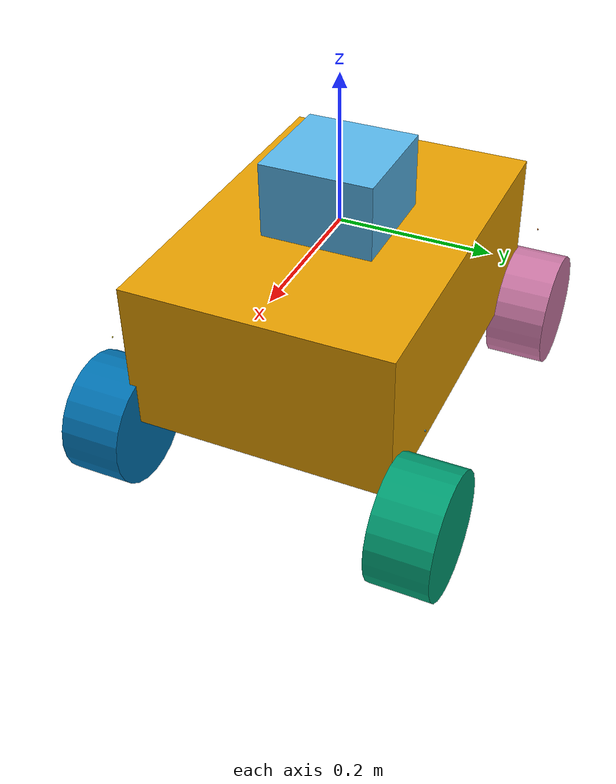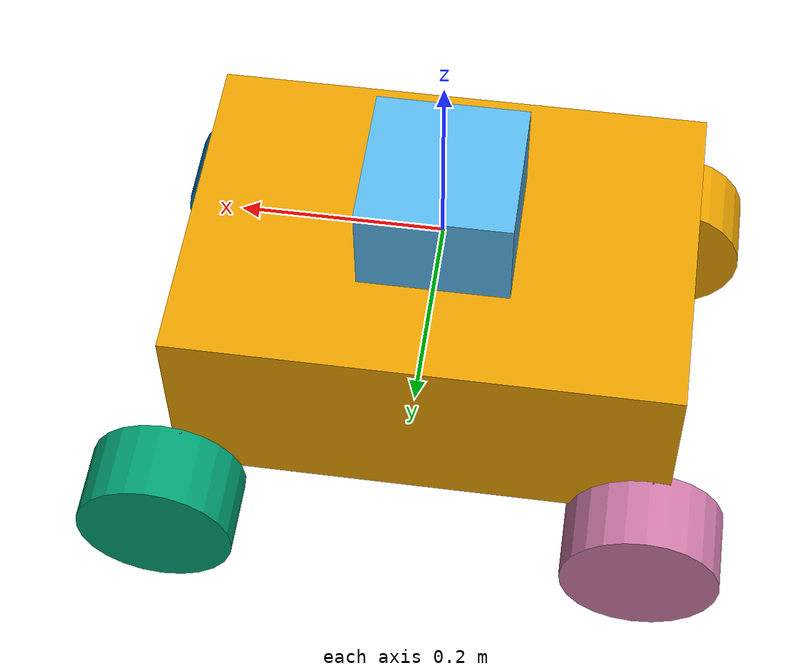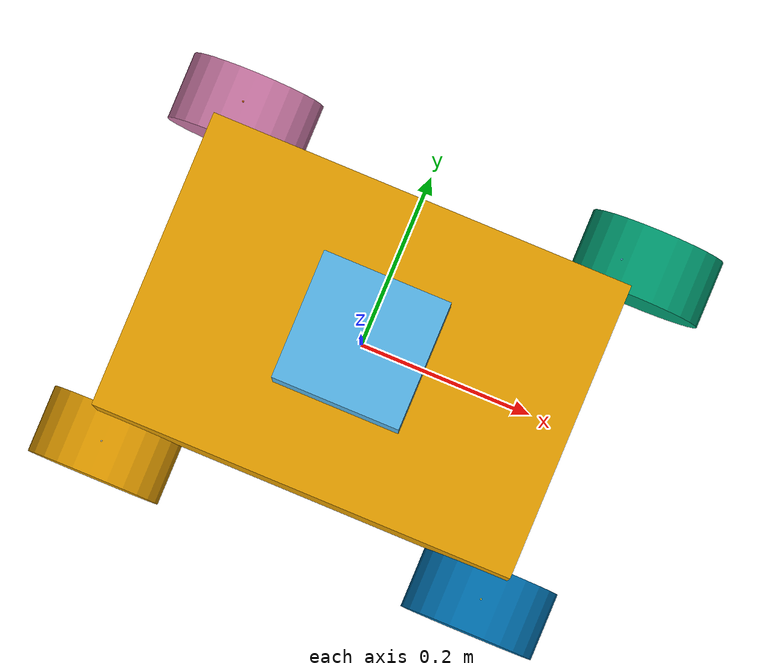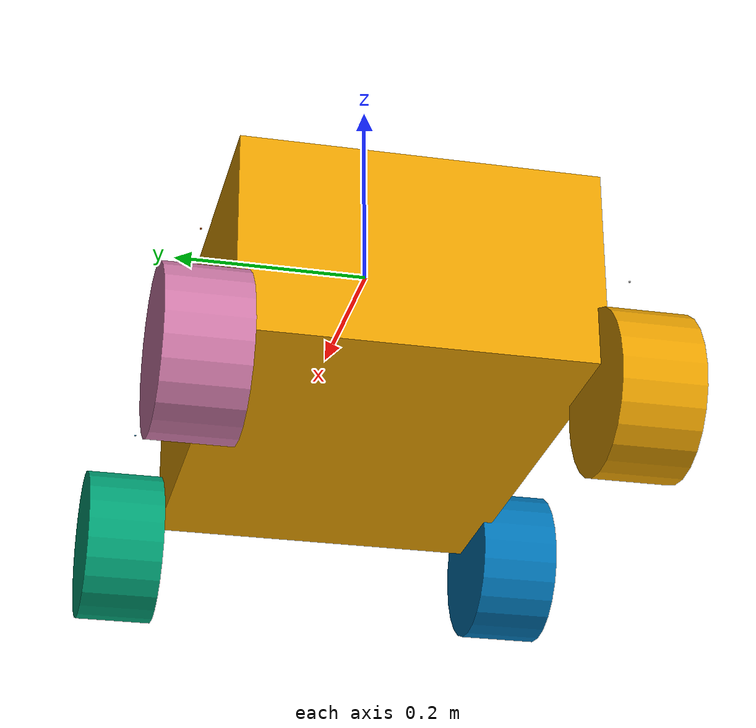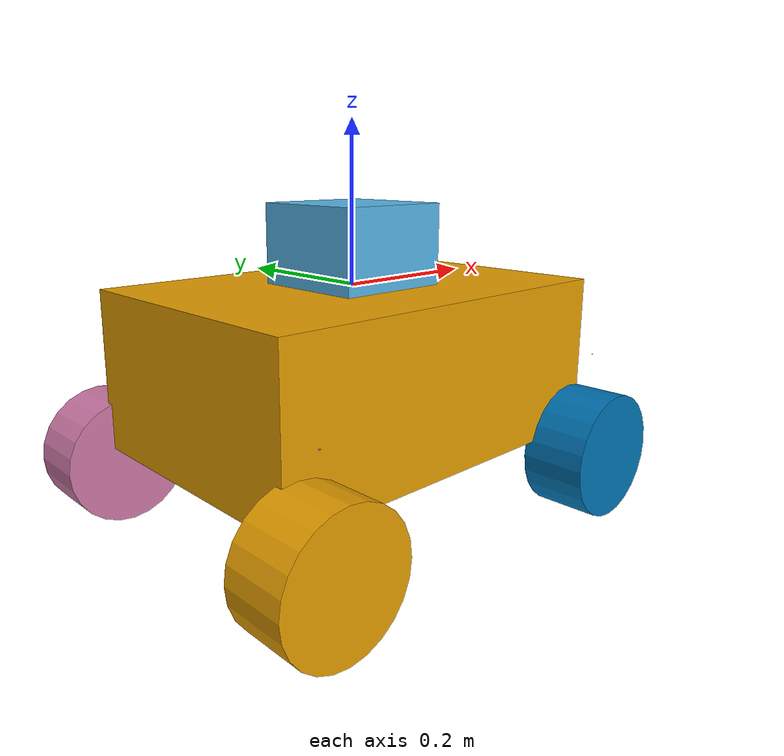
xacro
<?xml version="1.0"?>
<robot xmlns:xacro="http://ros.org/wiki/xacro" name="ranger_ouster">
    <xacro:arg name="use_simulation" default="false"/>
    <xacro:include filename="$(find simulation_config)/description/urdf/ranger_mini_gazebo.xacro"/>

    <link name="os_sensor">
        <inertial>
            <origin xyz="0.0 0.0 0.0"/>
            <mass value="0.5"/>
            <inertia ixx="1" ixy="0.0" ixz="0.0" iyy="1" iyz="0.0" izz="1"/>
        </inertial>
        <visual>
            <origin xyz="0 0 0" rpy="0 0 0" />
            <geometry>
                <box size="0.15 0.15 0.2"/>
            </geometry>
        </visual>
        <collision>
            <origin xyz="0 0 0" rpy="0 0 0" />
            <geometry>
                <box size="0.15 0.15 0.2"/>
            </geometry>
        </collision>
    </link>
    <joint name="fixed_ouster_joint" type="fixed">
        <parent link="base_link"/>
        <child link="os_sensor"/>
        <origin xyz="0.0 0.0 0.0" rpy="0 0 0" />
    </joint>
</robot>

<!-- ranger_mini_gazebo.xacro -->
<robot name="ranger_mini_v2"
    xmlns:xacro="http://ros.org/wiki/xacro">
    <!-- Base link -->
    <link name="base_link">
        <inertial>
            <origin xyz="0.0 0.0 0.0"/>
            <mass value="10"/>
            <inertia ixx="1" ixy="0.0" ixz="0.0" iyy="1" iyz="0.0" izz="1"/>
        </inertial>
        <visual>
            <origin xyz="0 0 -0.1" rpy="0 0 0" />
            <geometry>
                <box size="0.5 0.35 0.2"/>
            </geometry>
        </visual>
        <collision>
            <origin xyz="0 0 -0.1" rpy="0 0 0" />
            <geometry>
                <box size="0.5 0.35 0.2"/>
            </geometry>
        </collision>

    </link>

   <link name="fl_steering_wheel_link">
        <inertial>
            <origin xyz="0.0 0.0 0.0"/>
            <mass value="1"/>
            <inertia ixx="0.01" ixy="0.0" ixz="0.0" iyy="0.01" iyz="0.0" izz="0.01"/>
        </inertial>
        <visual>
            <origin xyz="0 0 0" rpy="0 0 0" />
            <geometry>
                <cylinder radius="0.001" length="0.001"/>
            </geometry>
        </visual>
        <collision>
            <origin xyz="0 0 0.008" rpy="0 0 0" />
            <geometry>
                <cylinder radius="0.001" length="0.001"/>
            </geometry>
        </collision>
        <collision>
            <origin xyz="0 0 0" rpy="0 0 0" />
            <geometry>
                <cylinder radius="0.001" length="0.001"/>
            </geometry>
        </collision>
    </link>
    <joint name="fl_steering_wheel" type="revolute">
        <origin xyz="0.23 0.206 -0.1" rpy="0 0 0" />
        <parent link="base_link"/>
        <child link="fl_steering_wheel_link"/>
        <axis xyz="0 0 1" rpy="0 0 0" />
        <limit effort="5" velocity="6.28"  lower="-2.1" upper="2.1" />
    </joint>

        <link name="fl_wheel_link">
            <inertial>
                <mass value="8" />
                <origin xyz="0 0 0" />
                <inertia ixx="0.1171" ixy="0" ixz="0" iyy="0.1361" iyz="0" izz="0.1171" />
            </inertial>
            <visual>
                <origin xyz="0 0 0" rpy="1.57 0 0" />
                <geometry>
                    <cylinder length="0.08" radius="0.08" />
                </geometry>
            </visual>
            <collision>
                <origin xyz="0 0 0" rpy="1.57 0 0" />
                <geometry>
                    <cylinder length="0.08" radius="0.08" />
                </geometry>
            </collision>
        </link>

        <joint name="fl_wheel" type="continuous">
            <origin xyz="0.03 0.01 -0.12" rpy="0 0 0" />
            <parent link="fl_steering_wheel_link"/>
            <child link="fl_wheel_link"/>
            <axis xyz="0 1 0" rpy="0 0 0" />
        </joint>

   <link name="fr_steering_wheel_link">
        <inertial>
            <origin xyz="0.0 0.0 0.0" rpy="0.0 0.0 0.0"/>
            <mass value="1"/>
            <inertia ixx="0.01" ixy="0.0" ixz="0.0" iyy="0.01" iyz="0.0" izz="0.01"/>
        </inertial>
        <visual>
            <origin xyz="0 0 0.008" rpy="0 0 0" />
            <geometry>
                <cylinder radius="0.001" length="0.001"/>
            </geometry>
        </visual>
        <collision>
            <origin xyz="0 0 0.008" rpy="0 0 0" />
            <geometry>
                <cylinder radius="0.001" length="0.001"/>
            </geometry>
        </collision>
    </link>
    <joint name="fr_steering_wheel" type="revolute">
        <origin xyz="0.23 -0.206 -0.1" rpy="0 0 0" />
        <parent link="base_link"/>
        <child link="fr_steering_wheel_link"/>
        <axis xyz="0 0 1" rpy="0 0 0" />
        <limit effort="5" velocity="6.28"  lower="-2.1" upper="2.1" />
    </joint>

        <link name="fr_wheel_link">
            <inertial>
                <mass value="8" />
                <origin xyz="0 0 0" />
                <inertia ixx="0.1171" ixy="0" ixz="0" iyy="0.1361" iyz="0" izz="0.1171" />
            </inertial>
            <visual>
                <origin xyz="0 0 0" rpy="1.57 0 0" />
                <geometry>
                    <cylinder length="0.08" radius="0.08" />
                </geometry>
            </visual>
            <collision>
                <origin xyz="0 0 0" rpy="1.57 0 0" />
                <geometry>
                    <cylinder length="0.08" radius="0.085" />
                </geometry>
            </collision>
        </link>

        <joint name="fr_wheel" type="continuous">
            <origin xyz="0.0 0.0 -0.12" rpy="0 0 0" />
            <parent link="fr_steering_wheel_link"/>
            <child link="fr_wheel_link"/>
            <axis xyz="0 1 0" rpy="0 0 0" />
        </joint>

   <link name="rl_steering_wheel_link">
        <inertial>
            <origin xyz="0.0 0.0 0.0" rpy="0.0 0.0 0.0"/>
            <mass value="1"/>
            <inertia ixx="0.01" ixy="0.0" ixz="0.0" iyy="0.01" iyz="0.0" izz="0.01"/>
        </inertial>
        <visual>
            <origin xyz="0 0 0.008" rpy="0 0 0" />
            <geometry>
                <cylinder radius="0.001" length="0.001"/>
            </geometry>
        </visual>
        <collision>
            <origin xyz="0 0 0.008" rpy="0 0 0" />
            <geometry>
                <cylinder radius="0.001" length="0.001"/>
            </geometry>
        </collision>
    </link>
    <joint name="rl_steering_wheel" type="revolute">
        <origin xyz="-0.23 0.206 -0.1" rpy="0 0 0" />
        <parent link="base_link"/>
        <child link="rl_steering_wheel_link"/>
        <axis xyz="0 0 1" rpy="0 0 0" />
        <limit effort="5" velocity="6.28"  lower="-2.1" upper="2.1" />
    </joint>

        <link name="rl_wheel_link">
            <inertial>
                <mass value="8" />
                <origin xyz="0 0 0" />
                <inertia ixx="0.1171" ixy="0" ixz="0" iyy="0.1361" iyz="0" izz="0.1171" />
            </inertial>
            <visual>
                <origin xyz="0 0 0" rpy="1.57 0 0" />
                <geometry>
                    <cylinder length="0.08" radius="0.08" />
                </geometry>
            </visual>
            <collision>
                <origin xyz="0 0 0" rpy="1.57 0 0" />
                <geometry>
                    <cylinder length="0.08" radius="0.08" />
                </geometry>
            </collision>
        </link>

        <joint name="rl_wheel" type="continuous">
            <origin xyz="0.0 0.0 -0.12 " rpy="0 0 0" />
            <parent link="rl_steering_wheel_link"/>
            <child link="rl_wheel_link"/>
            <axis xyz="0 1 0" rpy="0 0 0" />
        </joint>

   <link name="rr_steering_wheel_link">
        <inertial>
            <origin xyz="0.0 0.0 0.0"/>
            <mass value="1"/>
            <inertia ixx="0.01" ixy="0.0" ixz="0.0" iyy="0.01" iyz="0.0" izz="0.01"/>
        </inertial>
        <visual>
            <origin xyz="0 0 0" rpy="0 0 0" />
            <geometry>
                <cylinder radius="0.001" length="0.001"/>
            </geometry>
        </visual>
        <collision>
            <origin xyz="0 0 0" rpy="0 0 0" />
            <geometry>
                <cylinder radius="0.001" length="0.001"/>
            </geometry>
        </collision>
    </link>
    <joint name="rr_steering_wheel" type="revolute">
        <origin xyz="-0.23 -0.206 -0.1" rpy="0 0 0" />
        <parent link="base_link"/>
        <child link="rr_steering_wheel_link"/>
        <axis xyz="0 0 1" rpy="0 0 0" />
        <limit effort="5" velocity="6.28"  lower="-2.1" upper="2.1" />
    </joint>

        <link name="rr_wheel_link">
            <inertial>
                <mass value="8" />
                <origin xyz="0 0 0" />
                <inertia ixx="0.1171" ixy="0" ixz="0" iyy="0.1361" iyz="0" izz="0.1171" />
            </inertial>
            <visual>
                <origin xyz="0 0 0" rpy="1.57 0 0" />
                <geometry>
                    <cylinder length="0.08" radius="0.08" />
                </geometry>
            </visual>
            <collision>
                <origin xyz="0 0 0" rpy="1.57 0 0" />
                <geometry>
                    <cylinder length="0.08" radius="0.08" />
                </geometry>
            </collision>
        </link>

        <joint name="rr_wheel" type="continuous">
            <origin xyz="0.0 0.0 -0.12 " rpy="0 0 0" />
            <parent link="rr_steering_wheel_link"/>
            <child link="rr_wheel_link"/>
            <axis xyz="0 1 0" rpy="0 0 0" />
        </joint>

	<transmission name="fl_steering_wheel_trans">
      <type>transmission_interface/SimpleTransmission</type>
      <joint name="fl_steering_wheel">
		<hardwareInterface>hardware_interface/PositionJointInterface</hardwareInterface>
      </joint>
	  <actuator name="fl_steering_wheel_motor">
		<hardwareInterface>hardware_interface/PositionJointInterface</hardwareInterface>
		<mechanicalReduction>30</mechanicalReduction>
      </actuator>
	</transmission>

	<transmission name="fr_steering_wheel_trans">
      <type>transmission_interface/SimpleTransmission</type>
      <joint name="fr_steering_wheel">
		<hardwareInterface>hardware_interface/PositionJointInterface</hardwareInterface>
      </joint>
	  <actuator name="fr_steering_wheel_motor">
		<hardwareInterface>hardware_interface/PositionJointInterface</hardwareInterface>
		<mechanicalReduction>30</mechanicalReduction>
      </actuator>
	</transmission>

	<transmission name="rl_steering_wheel_trans">
      <type>transmission_interface/SimpleTransmission</type>
      <joint name="rl_steering_wheel">
		<hardwareInterface>hardware_interface/PositionJointInterface</hardwareInterface>
      </joint>
	  <actuator name="rl_steering_wheel_motor">
		<hardwareInterface>hardware_interface/PositionJointInterface</hardwareInterface>
		<mechanicalReduction>30</mechanicalReduction>
      </actuator>
	</transmission>

	<transmission name="rr_steering_wheel_trans">
      <type>transmission_interface/SimpleTransmission</type>
      <joint name="rr_steering_wheel">
		<hardwareInterface>hardware_interface/PositionJointInterface</hardwareInterface>
      </joint>
	  <actuator name="rr_steering_wheel_motor">
		<hardwareInterface>hardware_interface/PositionJointInterface</hardwareInterface>
		<mechanicalReduction>30</mechanicalReduction>
      </actuator>
	</transmission>

	<transmission name="fl_wheel_trans">
      <type>transmission_interface/SimpleTransmission</type>
      <joint name="fl_wheel">
		<hardwareInterface>hardware_interface/VelocityJointInterface</hardwareInterface>
      </joint>
	  <actuator name="fl_wheel_motor">
		<hardwareInterface>hardware_interface/VelocityJointInterface</hardwareInterface>
		<mechanicalReduction>30</mechanicalReduction>
      </actuator>
	</transmission>

	<transmission name="fr_wheel_trans">
      <type>transmission_interface/SimpleTransmission</type>
      <joint name="fr_wheel">
		<hardwareInterface>hardware_interface/VelocityJointInterface</hardwareInterface>
      </joint>
	  <actuator name="fr_wheel_motor">
		<hardwareInterface>hardware_interface/VelocityJointInterface</hardwareInterface>
		<mechanicalReduction>30</mechanicalReduction>
      </actuator>
	</transmission>

	<transmission name="rl_wheel_trans">
      <type>transmission_interface/SimpleTransmission</type>
      <joint name="rl_wheel">
		<hardwareInterface>hardware_interface/VelocityJointInterface</hardwareInterface>
      </joint>
	  <actuator name="rl_wheel_motor">
		<hardwareInterface>hardware_interface/VelocityJointInterface</hardwareInterface>
		<mechanicalReduction>30</mechanicalReduction>
      </actuator>
	</transmission>

	<transmission name="rr_wheel_trans">
      <type>transmission_interface/SimpleTransmission</type>
      <joint name="rr_wheel">
		<hardwareInterface>hardware_interface/VelocityJointInterface</hardwareInterface>
      </joint>
	  <actuator name="rr_wheel_motor">
		<hardwareInterface>hardware_interface/VelocityJointInterface</hardwareInterface>
		<mechanicalReduction>30</mechanicalReduction>
      </actuator>
	</transmission>
  <gazebo>
    <plugin name="gazebo_ros_control" filename="libgazebo_ros_control.so">
    </plugin>
  </gazebo>

</robot>
